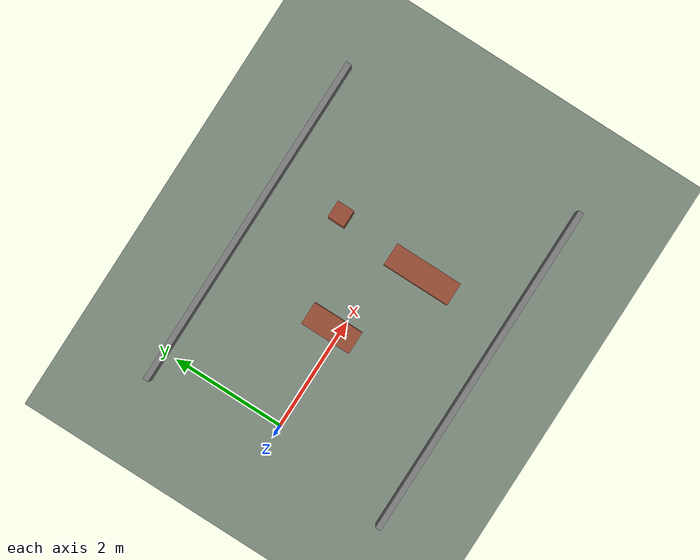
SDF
<?xml version="1.0"?>
<sdf version="1.10">
  <world name="hyperdog">
    <physics name="1ms" type="dart">
      <max_step_size>0.001</max_step_size>
      <real_time_factor>1.0</real_time_factor>
    </physics>
    <plugin filename="gz-sim-physics-system" name="gz::sim::systems::Physics"/>
    <plugin filename="gz-sim-user-commands-system" name="gz::sim::systems::UserCommands"/>
    <plugin filename="gz-sim-scene-broadcaster-system" name="gz::sim::systems::SceneBroadcaster"/>
    <plugin filename="gz-sim-sensors-system" name="gz::sim::systems::Sensors">
      <render_engine>ogre2</render_engine>
    </plugin>
    <plugin filename="gz-sim-imu-system" name="gz::sim::systems::Imu"/>
    <plugin filename="gz-sim-contact-system" name="gz::sim::systems::Contact"/>
    <plugin filename="gz-sim-apply-link-wrench-system" name="gz::sim::systems::ApplyLinkWrench"/>

    <gravity>0 0 -9.81</gravity>
    <scene>
      <ambient>0.6 0.6 0.6 1</ambient>
      <background>0.75 0.85 0.95 1</background>
      <grid>false</grid>
    </scene>
    <light type="directional" name="sun">
      <cast_shadows>true</cast_shadows>
      <pose>0 0 10 0 0 0</pose>
      <diffuse>0.9 0.9 0.9 1</diffuse>
      <specular>0.2 0.2 0.2 1</specular>
      <direction>-0.5 0.2 -0.9</direction>
    </light>

    <model name="ground_plane">
      <static>true</static>
      <link name="link">
        <collision name="collision">
          <geometry><plane><normal>0 0 1</normal><size>200 200</size></plane></geometry>
          <surface><friction><ode><mu>1.0</mu><mu2>1.0</mu2></ode></friction></surface>
        </collision>
        <visual name="visual">
          <geometry><plane><normal>0 0 1</normal><size>200 200</size></plane></geometry>
          <material><ambient>0.5 0.55 0.5 1</ambient><diffuse>0.5 0.55 0.5 1</diffuse></material>
        </visual>
      </link>
    </model>
    <!-- navigation course: obstacles between the start (0, 0) and the goal (5, 0) -->
    <model name="block_1">
      <static>true</static>
      <pose>1.8 0.15 0.25 0 0 0</pose>
      <link name="link">
        <collision name="collision"><geometry><box><size>0.4 0.9 0.5</size></box></geometry></collision>
        <visual name="visual"><geometry><box><size>0.4 0.9 0.5</size></box></geometry>
          <material><ambient>0.6 0.3 0.2 1</ambient><diffuse>0.6 0.3 0.2 1</diffuse></material></visual>
      </link>
    </model>
    <model name="block_2">
      <static>true</static>
      <pose>3.3 -0.6 0.25 0 0 0</pose>
      <link name="link">
        <collision name="collision"><geometry><box><size>0.4 1.2 0.5</size></box></geometry></collision>
        <visual name="visual"><geometry><box><size>0.4 1.2 0.5</size></box></geometry>
          <material><ambient>0.6 0.3 0.2 1</ambient><diffuse>0.6 0.3 0.2 1</diffuse></material></visual>
      </link>
    </model>
    <model name="pillar">
      <static>true</static>
      <pose>3.4 1.0 0.4 0 0 0</pose>
      <link name="link">
        <collision name="collision"><geometry><box><size>0.3 0.3 0.8</size></box></geometry></collision>
        <visual name="visual"><geometry><box><size>0.3 0.3 0.8</size></box></geometry>
          <material><ambient>0.6 0.3 0.2 1</ambient><diffuse>0.6 0.3 0.2 1</diffuse></material></visual>
      </link>
    </model>
    <model name="wall_left">
      <static>true</static>
      <pose>2.5 2.2 0.25 0 0 0</pose>
      <link name="link">
        <collision name="collision"><geometry><box><size>6.0 0.1 0.5</size></box></geometry></collision>
        <visual name="visual"><geometry><box><size>6.0 0.1 0.5</size></box></geometry>
          <material><ambient>0.5 0.5 0.5 1</ambient><diffuse>0.5 0.5 0.5 1</diffuse></material></visual>
      </link>
    </model>
    <model name="wall_right">
      <static>true</static>
      <pose>2.5 -2.2 0.25 0 0 0</pose>
      <link name="link">
        <collision name="collision"><geometry><box><size>6.0 0.1 0.5</size></box></geometry></collision>
        <visual name="visual"><geometry><box><size>6.0 0.1 0.5</size></box></geometry>
          <material><ambient>0.5 0.5 0.5 1</ambient><diffuse>0.5 0.5 0.5 1</diffuse></material></visual>
      </link>
    </model>
  </world>
</sdf>
